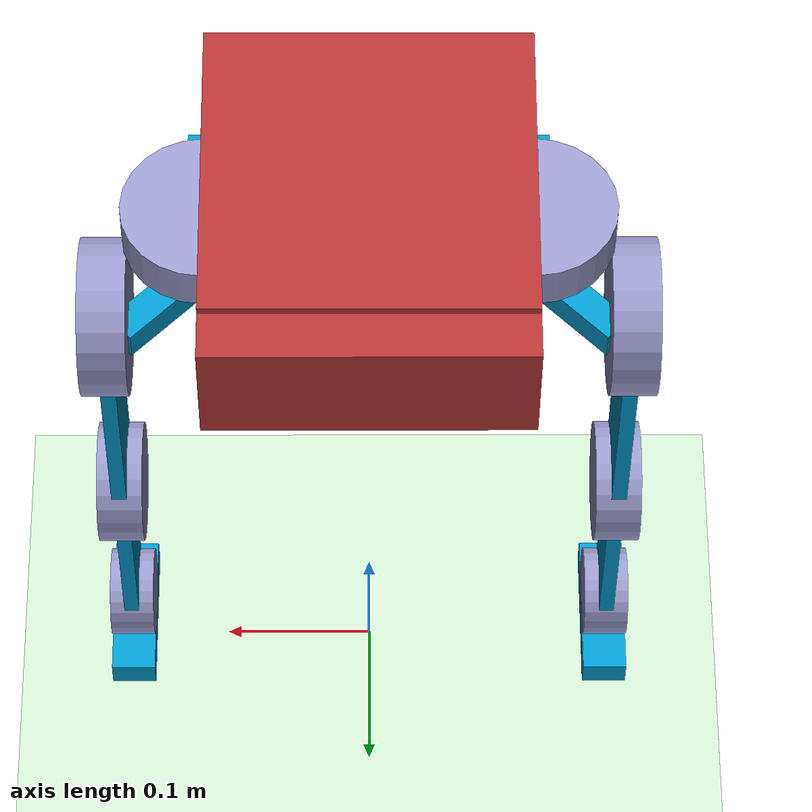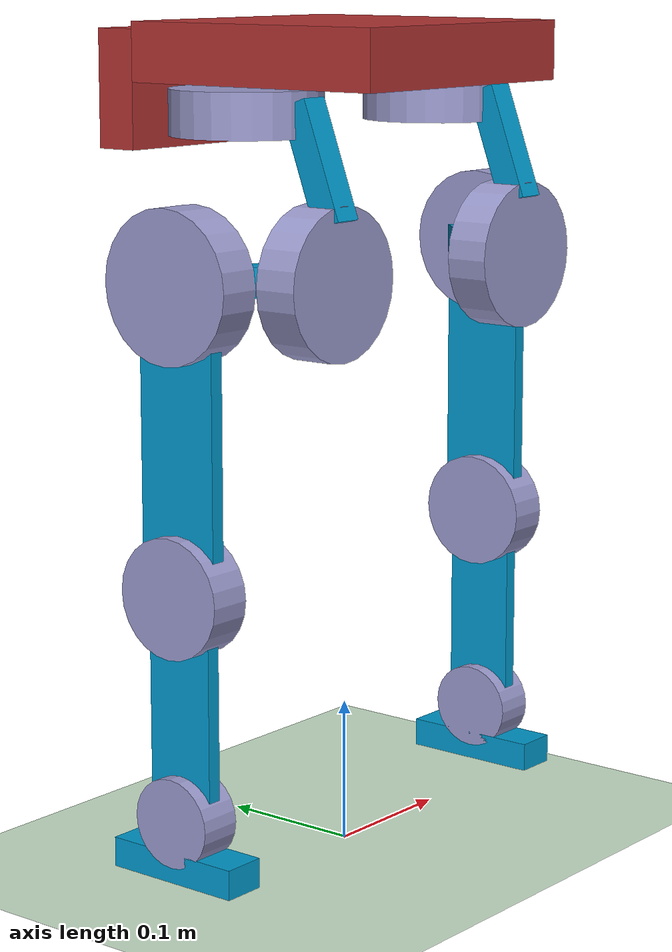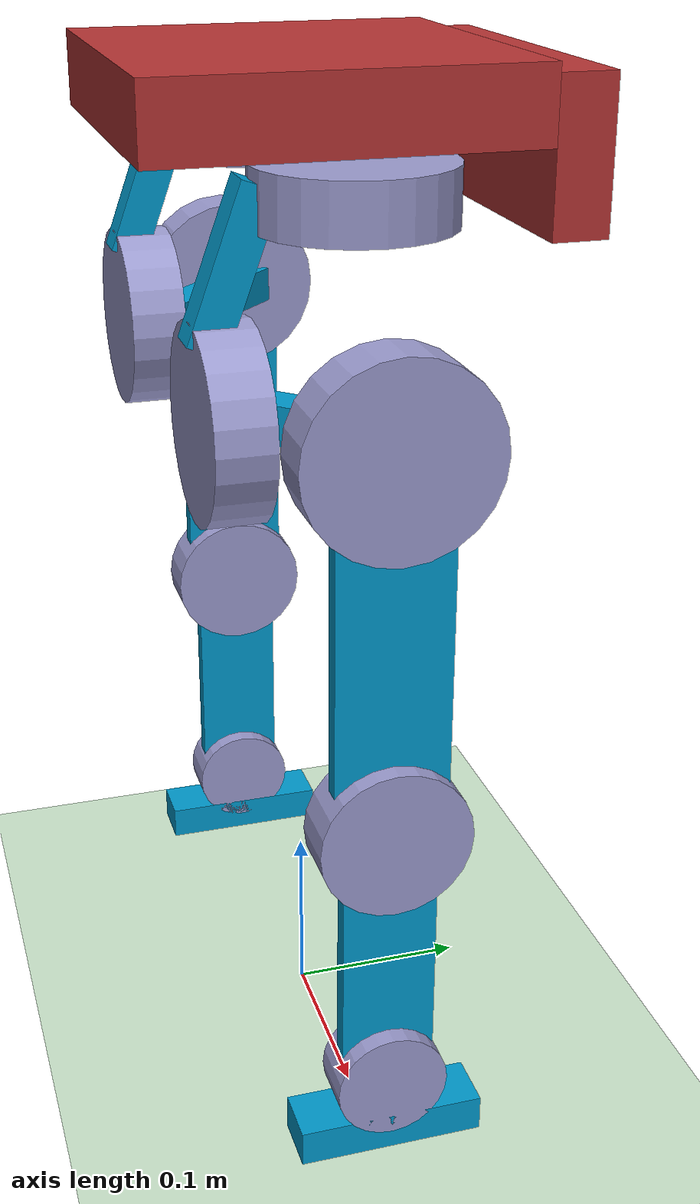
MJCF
<mujoco>
  <option timestep="0.005" iterations="50" tolerance="1e-8"/>
  <option gravity="0 0 -9.81"/>

  <default>
    <joint damping="1" armature="0.1" limited="true"/>
    <geom solimp="0.9 0.95 0.001" solref="0.02 1"/>
    <motor ctrlrange="-1 1"/>
  </default>

  <worldbody>
    <light pos="0 2 3" dir="0 -1 -1"/>
    <geom name="floor" type="plane" size="10 10 0.1" rgba="0.8 0.9 0.8 1"/>

    <!-- Торс -->
    <body name="torso" pos="0 0 0.55">
      <freejoint/>  <!-- Вместо joint type="free" -->
      <inertial pos="0 0 0" mass="5" diaginertia="0.1 0.1 0.1"/>
      <geom name="torso_middle_geom" type="box" size="0.1 0.1 0.02" rgba="0.7 0.2 0.2 1"/>
      <geom name="torso_front_geom" type="box" size="0.1 0.015 0.04" pos="0 0.115 -0.025" rgba="0.7 0.2 0.2 1"/>

      <!-- Right hip -->
      <body name="hip_right_z" pos="0.1 0 -0.02">
        <joint name="hip_right_z_joint" type="hinge" pos="0 0 0" axis="0 0 1" range="-30 30"/>
        <inertial pos="0 0 0" mass="1" diaginertia="0.05 0.05 0.05"/>
        <geom name="thigh_right_z_geom" type="cylinder" fromto="0 0 0 0 0 -0.03" size="0.05" rgba="0.6 0.6 0.8 1"/>
        <geom type="box" pos="0 -0.060 -0.045" size="0.01 0.01 0.04" euler="-20 0 0" rgba="0 0.6 0.8 1"/>

        <body name="hip_right_y" pos="0 -0.05 -0.12">
          <joint name="hip_right_y_joint" type="hinge" pos="0 0 0" axis="0 1 0" range="-30 15"/>
          <inertial pos="0 0 0" mass="1" diaginertia="0.05 0.05 0.05"/>
          <geom name="thigh_right_y_geom" type="cylinder" fromto="0 0 0 0 -0.03 0" size="0.05" rgba="0.6 0.6 0.8 1"/>
          <geom type="box" pos="0.02 0.03 0" size="0.01 0.05 0.01" euler="0 0 -45" rgba="0 0.6 0.8 1"/>

          <body name="hip_right_x" pos="0.05 0.05 0">
            <joint name="hip_right_x_joint" type="hinge" pos="0 0 0" axis="1 0 0" range="-60 30"/>
            <inertial pos="0 0 0" mass="1" diaginertia="0.05 0.05 0.05"/>
            <geom name="hip_right_x_geom" type="cylinder" fromto="0 0 0 0.03 0 0" size="0.05" rgba="0.6 0.6 0.8 1"/>
            <geom name="hip_right_shin" type="box" pos="0.015 0 -0.1" size="0.005 0.03 0.1" rgba="0 0.6 0.8 1"/>

            <!-- Right knee -->
            <body name="knee_right_x" pos="0 0 -0.2">
              <joint name="knee_right_x_joint" type="hinge" pos="0 0 0" axis="1 0 0" range="-30 90"/>
              <inertial pos="0 0 0" mass="1" diaginertia="0.05 0.05 0.05"/>
              <geom name="knee_right_x_geom" type="cylinder" fromto="0 0 0 0.03 0 0" size="0.04" rgba="0.6 0.6 0.8 1"/>
              <geom name="knee_right_calve" type="box" pos="0.015 0 -0.075" size="0.005 0.025 0.075" rgba="0 0.6 0.8 1"/>

              <!-- Right foot -->
              <body name="foot_right_x" pos="0 0 -0.15">
                <joint name="foot_right_x_joint" type="hinge" pos="0 0 0" axis="1 0 0" range="-60 60"/>
                <inertial pos="0 0 0" mass="1" diaginertia="0.05 0.05 0.05"/>
                <geom name="foot_right_x_geom" type="cylinder" fromto="0 0 0 0.03 0 0" size="0.03" rgba="0.6 0.6 0.8 1"/>
                <geom name="foot_right_heel" type="box" pos="0.015 0 -0.03" size="0.015 0.05 0.01" rgba="0 0.6 0.8 1"/>
              </body>
            </body>
          </body>
        </body>
      </body>

      <!-- Left hip -->
      <body name="hip_left_z" pos="-0.1 0 -0.02">
        <joint name="hip_left_z_joint" type="hinge" pos="0 0 0" axis="0 0 1" range="-30 30"/>
        <inertial pos="0 0 0" mass="1" diaginertia="0.05 0.05 0.05"/>
        <geom name="thigh_left_z_geom" type="cylinder" fromto="0 0 0 0 0 -0.03" size="0.05" rgba="0.6 0.6 0.8 1"/>
        <geom type="box" pos="0 -0.060 -0.045" size="0.01 0.01 0.04" euler="-20 0 0" rgba="0 0.6 0.8 1"/>

        <body name="hip_left_y" pos="0 -0.05 -0.12">
          <joint name="hip_left_y_joint" type="hinge" pos="0 0 0" axis="0 1 0" range="-30 15"/>
          <inertial pos="0 0 0" mass="1" diaginertia="0.05 0.05 0.05"/>
          <geom name="thigh_left_y_geom" type="cylinder" fromto="0 0 0 0 -0.03 0" size="0.05" rgba="0.6 0.6 0.8 1"/>
          <geom type="box" pos="-0.02 0.03 0" size="0.01 0.05 0.01" euler="0 0 45" rgba="0 0.6 0.8 1"/>

          <body name="hip_left_x" pos="-0.05 0.05 0">
            <joint name="hip_left_x_joint" type="hinge" pos="0 0 0" axis="1 0 0" range="-60 30"/>
            <inertial pos="0 0 0" mass="1" diaginertia="0.05 0.05 0.05"/>
            <geom name="hip_left_x_geom" type="cylinder" fromto="0 0 0 -0.03 0 0" size="0.05" rgba="0.6 0.6 0.8 1"/>
            <geom name="hip_left_shin" type="box" pos="-0.015 0 -0.1" size="0.005 0.03 0.1" rgba="0 0.6 0.8 1"/>

            <!-- Left knee -->
            <body name="knee_left_x" pos="0 0 -0.2">
              <joint name="knee_left_x_joint" type="hinge" pos="0 0 0" axis="1 0 0" range="-30 90"/>
              <inertial pos="0 0 0" mass="1" diaginertia="0.05 0.05 0.05"/>
              <geom name="knee_left_x_geom" type="cylinder" fromto="0 0 0 -0.03 0 0" size="0.04" rgba="0.6 0.6 0.8 1"/>
              <geom name="knee_left_calve" type="box" pos="-0.015 0 -0.075" size="0.005 0.025 0.075" rgba="0 0.6 0.8 1"/>

              <!-- Left foot -->
              <body name="foot_left_x" pos="0 0 -0.15">
                <joint name="foot_left_x_joint" type="hinge" pos="0 0 0" axis="1 0 0" range="-60 60"/>
                <inertial pos="0 0 0" mass="1" diaginertia="0.05 0.05 0.05"/>
                <geom name="foot_left_x_geom" type="cylinder" fromto="0 0 0 -0.03 0 0" size="0.03" rgba="0.6 0.6 0.8 1"/>
                <geom name="foot_left_heel" type="box" pos="-0.015 0 -0.03" size="0.015 0.05 0.01" rgba="0 0.6 0.8 1"/>
              </body>
            </body>
          </body>
        </body>
      </body>

    </body>
  </worldbody>

  <actuator>
    <motor name="hip_right_z_motor" joint="hip_right_z_joint" gear="50" ctrllimited="true" ctrlrange="-1 1"/>
    <motor name="hip_right_y_motor" joint="hip_right_y_joint" gear="50" ctrllimited="true" ctrlrange="-1 1"/>
    <motor name="hip_right_x_motor" joint="hip_right_x_joint" gear="50" ctrllimited="true" ctrlrange="-1 1"/>
    <motor name="knee_right_x_motor" joint="knee_right_x_joint" gear="50" ctrllimited="true" ctrlrange="-1 1"/>
    <motor name="foot_right_x_motor" joint="foot_right_x_joint" gear="50" ctrllimited="true" ctrlrange="-1 1"/>

    <motor name="hip_left_z_motor" joint="hip_left_z_joint" gear="50" ctrllimited="true" ctrlrange="-1 1"/>
    <motor name="hip_left_y_motor" joint="hip_left_y_joint" gear="50" ctrllimited="true" ctrlrange="-1 1"/>
    <motor name="hip_left_x_motor" joint="hip_left_x_joint" gear="50" ctrllimited="true" ctrlrange="-1 1"/>
    <motor name="knee_left_x_motor" joint="knee_left_x_joint" gear="50" ctrllimited="true" ctrlrange="-1 1"/>
    <motor name="foot_left_x_motor" joint="foot_left_x_joint" gear="50" ctrllimited="true" ctrlrange="-1 1"/>
  </actuator>

</mujoco>
